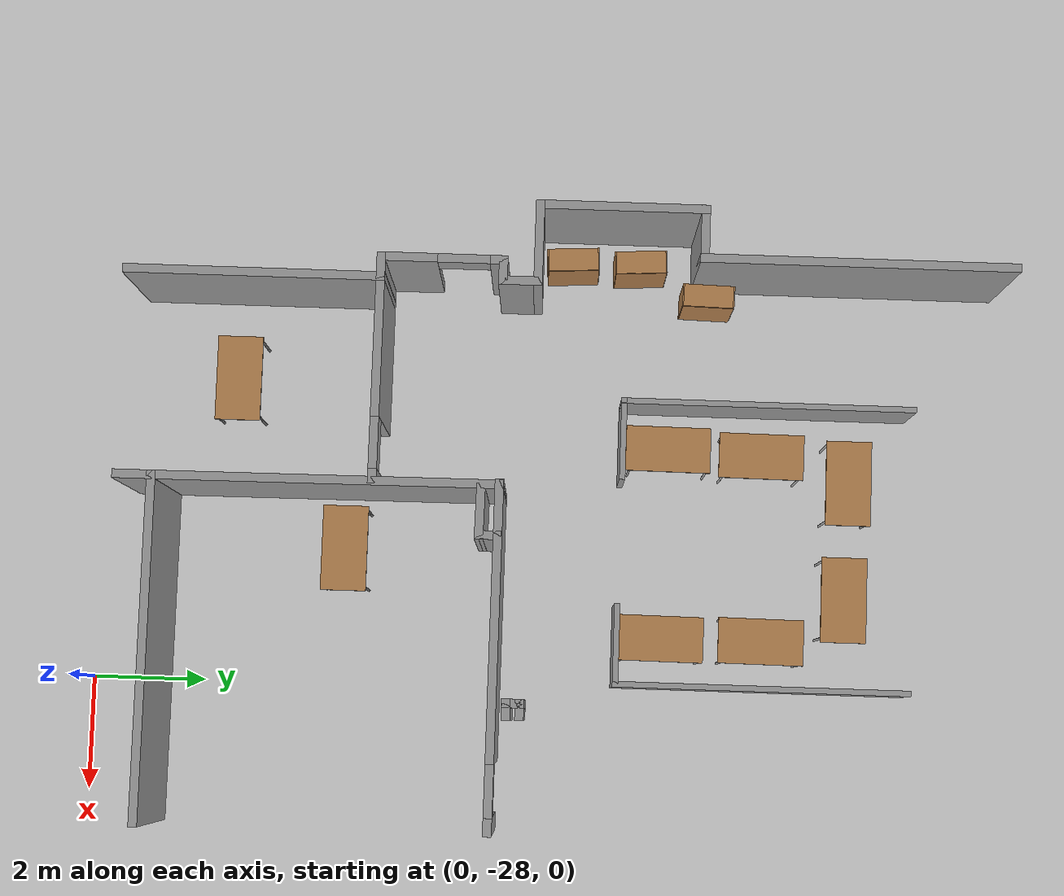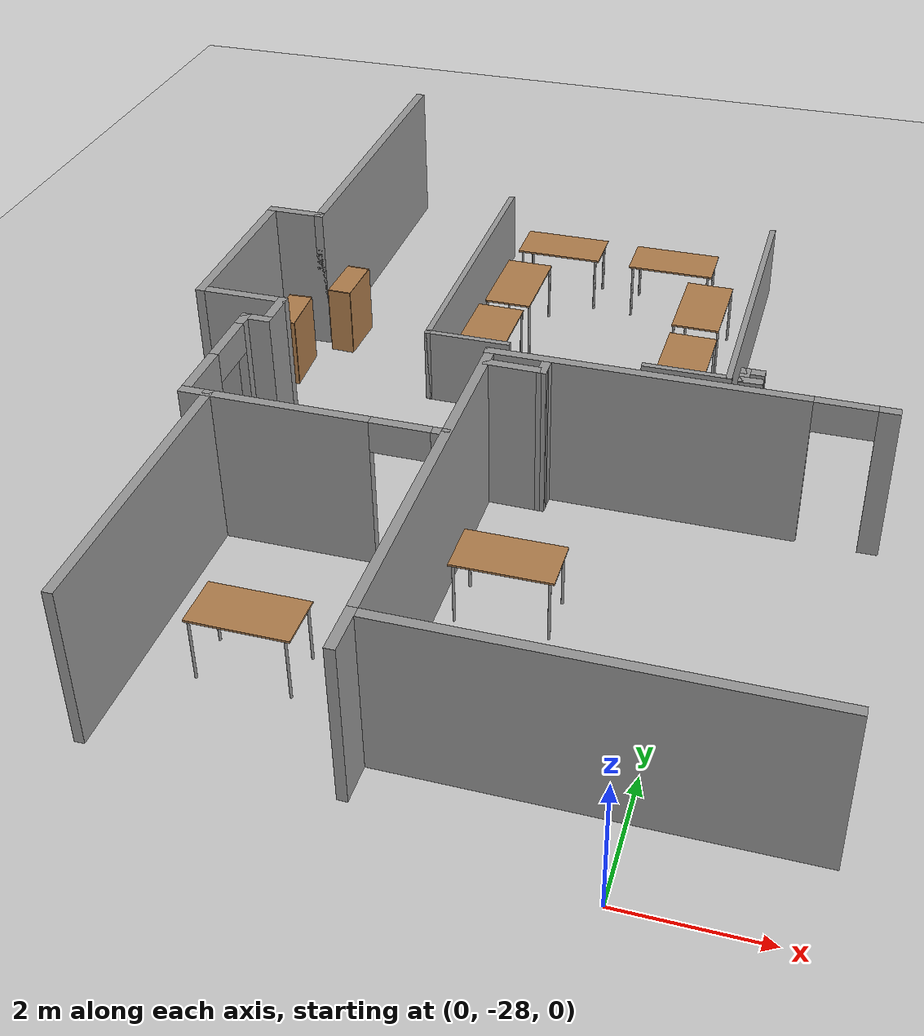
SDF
<sdf version="1.7">
 <world name="default">
  <model name="ground_plane">
   <static>1</static>
   <link name="link">
    <collision name="collision">
     <geometry><plane><normal>0 0 1</normal><size>100 100</size></plane></geometry>
     <surface>
      <contact><collide_bitmask>65535</collide_bitmask></contact>
      <friction><ode><mu>100</mu><mu2>50</mu2></ode></friction>
     </surface>
    </collision>
    <visual name="visual">
     <cast_shadows>0</cast_shadows>
     <geometry><plane><normal>0 0 1</normal><size>100 100</size></plane></geometry>
     <material>
      <script><uri>file://media/materials/scripts/gazebo.material</uri><name>Gazebo/Grey</name></script>
     </material>
    </visual>
   </link>
  </model>
  <model name="XXXXX_office_centered">
   <pose>8.46852 -9.33941 0 0 -0 0</pose>
   <link name="Wall_16">
    <collision name="Wall_16_Collision">
     <geometry><box><size>6 0.15 2.5</size></box></geometry>
     <pose>0 0 1.25 0 -0 0</pose>
    </collision>
    <visual name="Wall_16_Visual">
     <pose>0 0 1.25 0 -0 0</pose>
     <geometry><box><size>6 0.15 2.5</size></box></geometry>
     <material>
      <script><uri>file://media/materials/scripts/gazebo.material</uri><name>Gazebo/Grey</name></script>
      <ambient>1 1 1 1</ambient>
     </material>
     <meta><layer>0</layer></meta>
    </visual>
    <pose>-8.95 -17.3501 0 0 -0 3.14159</pose>
   </link>
   <link name="Wall_168">
    <collision name="Wall_168_Collision">
     <geometry><box><size>5.2 0.1 1.3</size></box></geometry>
     <pose>0 0 0.65 0 -0 0</pose>
    </collision>
    <visual name="Wall_168_Visual">
     <pose>0 0 0.65 0 -0 0</pose>
     <geometry><box><size>5.2 0.1 1.3</size></box></geometry>
     <material>
      <script><uri>file://media/materials/scripts/gazebo.material</uri><name>Gazebo/Grey</name></script>
      <ambient>1 1 1 1</ambient>
     </material>
     <meta><layer>0</layer></meta>
    </visual>
    <pose>-13.6017 -6.76685 0 0 -0 -1.5708</pose>
   </link>
   <link name="Wall_169">
    <collision name="Wall_169_Collision">
     <geometry><box><size>1.44982 0.1 1.3</size></box></geometry>
     <pose>0 0 0.65 0 -0 0</pose>
    </collision>
    <visual name="Wall_169_Visual">
     <pose>0 0 0.65 0 -0 0</pose>
     <geometry><box><size>1.44982 0.1 1.3</size></box></geometry>
     <material>
      <script><uri>file://media/materials/scripts/gazebo.material</uri><name>Gazebo/Grey</name></script>
      <ambient>1 1 1 1</ambient>
     </material>
     <meta><layer>0</layer></meta>
    </visual>
    <pose>-12.9267 -9.31685 0 0 -0 0</pose>
   </link>
   <link name="Wall_17">
    <collision name="Wall_17_Collision">
     <geometry><box><size>6.06274 0.15 2.5</size></box></geometry>
     <pose>0 0 1.25 0 -0 0</pose>
    </collision>
    <visual name="Wall_17_Visual">
     <pose>0 0 1.25 0 -0 0</pose>
     <geometry><box><size>6.06274 0.15 2.5</size></box></geometry>
     <material>
      <script><uri>file://media/materials/scripts/gazebo.material</uri><name>Gazebo/Grey</name></script>
      <ambient>1 1 1 1</ambient>
     </material>
     <meta><layer>0</layer></meta>
    </visual>
    <pose>-11.8884 -14.3938 0 0 -0 1.57532</pose>
   </link>
   <link name="Wall_171">
    <collision name="Wall_171_Collision">
     <geometry><box><size>5.2 0.1 1.3</size></box></geometry>
     <pose>0 0 0.65 0 -0 0</pose>
    </collision>
    <visual name="Wall_171_Visual">
     <pose>0 0 0.65 0 -0 0</pose>
     <geometry><box><size>5.2 0.1 1.3</size></box></geometry>
     <material>
      <script><uri>file://media/materials/scripts/gazebo.material</uri><name>Gazebo/Grey</name></script>
      <ambient>1 1 1 1</ambient>
     </material>
     <meta><layer>0</layer></meta>
    </visual>
    <pose>-8.61273 -6.78585 0 0 -0 -1.5708</pose>
   </link>
   <link name="Wall_172">
    <collision name="Wall_172_Collision">
     <geometry><box><size>1.45042 0.1 1.3</size></box></geometry>
     <pose>0 0 0.65 0 -0 0</pose>
    </collision>
    <visual name="Wall_172_Visual">
     <pose>0 0 0.65 0 -0 0</pose>
     <geometry><box><size>1.45042 0.1 1.3</size></box></geometry>
     <material>
      <script><uri>file://media/materials/scripts/gazebo.material</uri><name>Gazebo/Grey</name></script>
      <ambient>1 1 1 1</ambient>
     </material>
     <meta><layer>0</layer></meta>
    </visual>
    <pose>-9.28773 -9.33585 0 0 -0 3.14159</pose>
   </link>
   <link name="Wall_18">
    <pose>-8.98343 -11.4376 0 0 -0 -7.6e-05</pose>
    <visual name="Wall_18_Visual_0">
     <pose>-0.603862 0 1.25 0 -0 0</pose>
     <geometry><box><size>4.80568 0.15 2.5</size></box></geometry>
     <material>
      <script><uri>file://media/materials/scripts/gazebo.material</uri><name>Gazebo/Grey</name></script>
      <ambient>1 1 1 1</ambient>
     </material>
     <meta><layer>0</layer></meta>
    </visual>
    <collision name="Wall_18_Collision_0">
     <geometry><box><size>4.80568 0.15 2.5</size></box></geometry>
     <pose>-0.603862 0 1.25 0 -0 0</pose>
    </collision>
    <visual name="Wall_18_Visual_1">
     <pose>2.85284 0 1.25 0 -0 0</pose>
     <geometry><box><size>0.307723 0.15 2.5</size></box></geometry>
     <material>
      <script><uri>file://media/materials/scripts/gazebo.material</uri><name>Gazebo/Grey</name></script>
      <ambient>1 1 1 1</ambient>
     </material>
     <meta><layer>0</layer></meta>
    </visual>
    <collision name="Wall_18_Collision_1">
     <geometry><box><size>0.307723 0.15 2.5</size></box></geometry>
     <pose>2.85284 0 1.25 0 -0 0</pose>
    </collision>
    <visual name="Wall_18_Visual_2">
     <pose>2.24898 0 2.25 0 -0 0</pose>
     <geometry><box><size>0.9 0.15 0.5</size></box></geometry>
     <material>
      <script><uri>file://media/materials/scripts/gazebo.material</uri><name>Gazebo/Grey</name></script>
      <ambient>1 1 1 1</ambient>
     </material>
     <meta><layer>0</layer></meta>
    </visual>
    <collision name="Wall_18_Collision_2">
     <geometry><box><size>0.9 0.15 0.5</size></box></geometry>
     <pose>2.24898 0 2.25 0 -0 0</pose>
    </collision>
   </link>
   <link name="Wall_23">
    <collision name="Wall_23_Collision">
     <geometry><box><size>4.5 0.15 2.5</size></box></geometry>
     <pose>0 0 1.25 0 -0 0</pose>
    </collision>
    <visual name="Wall_23_Visual">
     <pose>0 0 1.25 0 -0 0</pose>
     <geometry><box><size>4.5 0.15 2.5</size></box></geometry>
     <material>
      <script><uri>file://media/materials/scripts/gazebo.material</uri><name>Gazebo/Grey</name></script>
      <ambient>1 1 1 1</ambient>
     </material>
     <meta><layer>0</layer></meta>
    </visual>
    <pose>-15.425 -15.7751 0 0 -0 1.5708</pose>
   </link>
   <link name="Wall_24">
    <collision name="Wall_24_Collision">
     <geometry><box><size>0.5 0.15 2.5</size></box></geometry>
     <pose>0 0 1.25 0 -0 0</pose>
    </collision>
    <visual name="Wall_24_Visual">
     <pose>0 0 1.25 0 -0 0</pose>
     <geometry><box><size>0.5 0.15 2.5</size></box></geometry>
     <material>
      <script><uri>file://media/materials/scripts/gazebo.material</uri><name>Gazebo/Grey</name></script>
      <ambient>1 1 1 1</ambient>
     </material>
     <meta><layer>0</layer></meta>
    </visual>
    <pose>-15.6 -13.6001 0 0 -0 3.14159</pose>
   </link>
   <link name="Wall_25">
    <pose>-15.775 -12.5501 0 0 -0 1.5708</pose>
    <visual name="Wall_25_Visual_0">
     <pose>-0.602648 0 1.25 0 -0 0</pose>
     <geometry><box><size>1.0447 0.15 2.5</size></box></geometry>
     <material>
      <script><uri>file://media/materials/scripts/gazebo.material</uri><name>Gazebo/Grey</name></script>
      <ambient>1 1 1 1</ambient>
     </material>
     <meta><layer>0</layer></meta>
    </visual>
    <collision name="Wall_25_Collision_0">
     <geometry><box><size>1.0447 0.15 2.5</size></box></geometry>
     <pose>-0.602648 0 1.25 0 -0 0</pose>
    </collision>
    <visual name="Wall_25_Visual_1">
     <pose>0.972352 0 1.25 0 -0 0</pose>
     <geometry><box><size>0.305297 0.15 2.5</size></box></geometry>
     <material>
      <script><uri>file://media/materials/scripts/gazebo.material</uri><name>Gazebo/Grey</name></script>
      <ambient>1 1 1 1</ambient>
     </material>
     <meta><layer>0</layer></meta>
    </visual>
    <collision name="Wall_25_Collision_1">
     <geometry><box><size>0.305297 0.15 2.5</size></box></geometry>
     <pose>0.972352 0 1.25 0 -0 0</pose>
    </collision>
    <visual name="Wall_25_Visual_2">
     <pose>0.369703 0 2.25 0 -0 0</pose>
     <geometry><box><size>0.9 0.15 0.5</size></box></geometry>
     <material>
      <script><uri>file://media/materials/scripts/gazebo.material</uri><name>Gazebo/Grey</name></script>
      <ambient>1 1 1 1</ambient>
     </material>
     <meta><layer>0</layer></meta>
    </visual>
    <collision name="Wall_25_Collision_2">
     <geometry><box><size>0.9 0.15 0.5</size></box></geometry>
     <pose>0.369703 0 2.25 0 -0 0</pose>
    </collision>
   </link>
   <link name="Wall_26">
    <collision name="Wall_26_Collision">
     <geometry><box><size>0.5 0.15 2.5</size></box></geometry>
     <pose>0 0 1.25 0 -0 0</pose>
    </collision>
    <visual name="Wall_26_Visual">
     <pose>0 0 1.25 0 -0 0</pose>
     <geometry><box><size>0.5 0.15 2.5</size></box></geometry>
     <material>
      <script><uri>file://media/materials/scripts/gazebo.material</uri><name>Gazebo/Grey</name></script>
      <ambient>1 1 1 1</ambient>
     </material>
     <meta><layer>0</layer></meta>
    </visual>
    <pose>-15.6 -11.5001 0 0 -0 0</pose>
   </link>
   <link name="Wall_27">
    <collision name="Wall_27_Collision">
     <geometry><box><size>0.75 0.15 2.5</size></box></geometry>
     <pose>0 0 1.25 0 -0 0</pose>
    </collision>
    <visual name="Wall_27_Visual">
     <pose>0 0 1.25 0 -0 0</pose>
     <geometry><box><size>0.75 0.15 2.5</size></box></geometry>
     <material>
      <script><uri>file://media/materials/scripts/gazebo.material</uri><name>Gazebo/Grey</name></script>
      <ambient>1 1 1 1</ambient>
     </material>
     <meta><layer>0</layer></meta>
    </visual>
    <pose>-15.425 -11.2001 0 0 -0 1.5708</pose>
   </link>
   <link name="Wall_28">
    <collision name="Wall_28_Collision">
     <geometry><box><size>1.5 0.15 2.5</size></box></geometry>
     <pose>0 0 1.25 0 -0 0</pose>
    </collision>
    <visual name="Wall_28_Visual">
     <pose>0 0 1.25 0 -0 0</pose>
     <geometry><box><size>1.5 0.15 2.5</size></box></geometry>
     <material>
      <script><uri>file://media/materials/scripts/gazebo.material</uri><name>Gazebo/Grey</name></script>
      <ambient>1 1 1 1</ambient>
     </material>
     <meta><layer>0</layer></meta>
    </visual>
    <pose>-16.1 -10.9001 0 0 -0 3.14159</pose>
   </link>
   <link name="Wall_29">
    <collision name="Wall_29_Collision">
     <geometry><box><size>3 0.15 2.5</size></box></geometry>
     <pose>0 0 1.25 0 -0 0</pose>
    </collision>
    <visual name="Wall_29_Visual">
     <pose>0 0 1.25 0 -0 0</pose>
     <geometry><box><size>3 0.15 2.5</size></box></geometry>
     <material>
      <script><uri>file://media/materials/scripts/gazebo.material</uri><name>Gazebo/Grey</name></script>
      <ambient>1 1 1 1</ambient>
     </material>
     <meta><layer>0</layer></meta>
    </visual>
    <pose>-16.775 -9.47515 0 0 -0 1.5708</pose>
   </link>
   <link name="Wall_30">
    <collision name="Wall_30_Collision">
     <geometry><box><size>1 0.15 2.5</size></box></geometry>
     <pose>0 0 1.25 0 -0 0</pose>
    </collision>
    <visual name="Wall_30_Visual">
     <pose>0 0 1.25 0 -0 0</pose>
     <geometry><box><size>1 0.15 2.5</size></box></geometry>
     <material>
      <script><uri>file://media/materials/scripts/gazebo.material</uri><name>Gazebo/Grey</name></script>
      <ambient>1 1 1 1</ambient>
     </material>
     <meta><layer>0</layer></meta>
    </visual>
    <pose>-16.35 -8.05015 0 0 -0 0</pose>
   </link>
   <link name="Wall_31">
    <collision name="Wall_31_Collision">
     <geometry><box><size>5.5 0.15 2.5</size></box></geometry>
     <pose>0 0 1.25 0 -0 0</pose>
    </collision>
    <visual name="Wall_31_Visual">
     <pose>0 0 1.25 0 -0 0</pose>
     <geometry><box><size>5.5 0.15 2.5</size></box></geometry>
     <material>
      <script><uri>file://media/materials/scripts/gazebo.material</uri><name>Gazebo/Grey</name></script>
      <ambient>1 1 1 1</ambient>
     </material>
     <meta><layer>0</layer></meta>
    </visual>
    <pose>-15.925 -5.37515 0 0 -0 1.5708</pose>
   </link>
   <link name="Wall_65">
    <collision name="Wall_65_Collision">
     <geometry><box><size>0.959175 0.15 2.5</size></box></geometry>
     <pose>0 0 1.25 0 -0 0</pose>
    </collision>
    <visual name="Wall_65_Visual">
     <pose>0 0 1.25 0 -0 0</pose>
     <geometry><box><size>0.959175 0.15 2.5</size></box></geometry>
     <material>
      <script><uri>file://media/materials/scripts/gazebo.material</uri><name>Gazebo/Grey</name></script>
      <ambient>1 1 1 1</ambient>
     </material>
     <meta><layer>0</layer></meta>
    </visual>
    <pose>-11.4354 -11.7519 0 0 -0 -0.012499</pose>
   </link>
   <link name="Wall_66">
    <collision name="Wall_66_Collision">
     <geometry><box><size>0.453417 0.15 2.5</size></box></geometry>
     <pose>0 0 1.25 0 -0 0</pose>
    </collision>
    <visual name="Wall_66_Visual">
     <pose>0 0 1.25 0 -0 0</pose>
     <geometry><box><size>0.453417 0.15 2.5</size></box></geometry>
     <material>
      <script><uri>file://media/materials/scripts/gazebo.material</uri><name>Gazebo/Grey</name></script>
      <ambient>1 1 1 1</ambient>
     </material>
     <meta><layer>0</layer></meta>
    </visual>
    <pose>-11.0308 -11.6053 0 0 -0 1.5708</pose>
   </link>
   <link name="Wall_73">
    <collision name="Wall_73_Collision">
     <geometry><box><size>0.740743 0.15 2.5</size></box></geometry>
     <pose>0 0 1.25 0 -0 0</pose>
    </collision>
    <visual name="Wall_73_Visual">
     <pose>0 0 1.25 0 -0 0</pose>
     <geometry><box><size>0.740743 0.15 2.5</size></box></geometry>
     <material>
      <script><uri>file://media/materials/scripts/gazebo.material</uri><name>Gazebo/Grey</name></script>
      <ambient>1 1 1 1</ambient>
     </material>
     <meta><layer>0</layer></meta>
    </visual>
    <pose>-11.8748 -17.6455 0 0 -0 -1.57005</pose>
   </link>
   <link name="Wall_75">
    <pose>-13.6757 -13.6019 0 0 -0 -0.000995</pose>
    <visual name="Wall_75_Visual_0">
     <pose>-0.573308 0 1.25 0 -0 0</pose>
     <geometry><box><size>2.50208 0.15 2.5</size></box></geometry>
     <material>
      <script><uri>file://media/materials/scripts/gazebo.material</uri><name>Gazebo/Grey</name></script>
      <ambient>1 1 1 1</ambient>
     </material>
     <meta><layer>0</layer></meta>
    </visual>
    <collision name="Wall_75_Collision_0">
     <geometry><box><size>2.50208 0.15 2.5</size></box></geometry>
     <pose>-0.573308 0 1.25 0 -0 0</pose>
    </collision>
    <visual name="Wall_75_Visual_1">
     <pose>1.70104 0 1.25 0 -0 0</pose>
     <geometry><box><size>0.246616 0.15 2.5</size></box></geometry>
     <material>
      <script><uri>file://media/materials/scripts/gazebo.material</uri><name>Gazebo/Grey</name></script>
      <ambient>1 1 1 1</ambient>
     </material>
     <meta><layer>0</layer></meta>
    </visual>
    <collision name="Wall_75_Collision_1">
     <geometry><box><size>0.246616 0.15 2.5</size></box></geometry>
     <pose>1.70104 0 1.25 0 -0 0</pose>
    </collision>
    <visual name="Wall_75_Visual_2">
     <pose>1.12773 0 2.25 0 -0 0</pose>
     <geometry><box><size>0.9 0.15 0.5</size></box></geometry>
     <material>
      <script><uri>file://media/materials/scripts/gazebo.material</uri><name>Gazebo/Grey</name></script>
      <ambient>1 1 1 1</ambient>
     </material>
     <meta><layer>0</layer></meta>
    </visual>
    <collision name="Wall_75_Collision_2">
     <geometry><box><size>0.9 0.15 0.5</size></box></geometry>
     <pose>1.12773 0 2.25 0 -0 0</pose>
    </collision>
   </link>
   <link name="Wall_77">
    <collision name="Wall_77_Collision">
     <geometry><box><size>0.374922 0.15 2.5</size></box></geometry>
     <pose>0 0 1.25 0 -0 0</pose>
    </collision>
    <visual name="Wall_77_Visual">
     <pose>0 0 1.25 0 -0 0</pose>
     <geometry><box><size>0.374922 0.15 2.5</size></box></geometry>
     <material>
      <script><uri>file://media/materials/scripts/gazebo.material</uri><name>Gazebo/Grey</name></script>
      <ambient>1 1 1 1</ambient>
     </material>
     <meta><layer>0</layer></meta>
    </visual>
    <pose>-8.21046 -11.0817 0 0 -0 1.5708</pose>
   </link>
   <link name="Wall_78">
    <collision name="Wall_78_Collision">
     <geometry><box><size>0.358294 0.15 2.5</size></box></geometry>
     <pose>0 0 1.25 0 -0 0</pose>
    </collision>
    <visual name="Wall_78_Visual">
     <pose>0 0 1.25 0 -0 0</pose>
     <geometry><box><size>0.358294 0.15 2.5</size></box></geometry>
     <material>
      <script><uri>file://media/materials/scripts/gazebo.material</uri><name>Gazebo/Grey</name></script>
      <ambient>1 1 1 1</ambient>
     </material>
     <meta><layer>0</layer></meta>
    </visual>
    <pose>-8.10631 -10.9693 0 0 -0 0</pose>
   </link>
   <link name="Wall_80">
    <collision name="Wall_80_Collision">
     <geometry><box><size>0.358399 0.15 2.5</size></box></geometry>
     <pose>0 0 1.25 0 -0 0</pose>
    </collision>
    <visual name="Wall_80_Visual">
     <pose>0 0 1.25 0 -0 0</pose>
     <geometry><box><size>0.358399 0.15 2.5</size></box></geometry>
     <material>
      <script><uri>file://media/materials/scripts/gazebo.material</uri><name>Gazebo/Grey</name></script>
      <ambient>1 1 1 1</ambient>
     </material>
     <meta><layer>0</layer></meta>
    </visual>
    <pose>-8.10301 -11.2041 0 0 -0 -3.10986</pose>
   </link>
   <static>1</static>
  </model>
  <model name="table">
   <static>1</static>
   <link name="link">
    <collision name="surface">
     <pose>0 0 1 0 -0 0</pose>
     <geometry><box><size>1.5 0.8 0.03</size></box></geometry>
     <surface><friction><ode><mu>0.6</mu><mu2>0.6</mu2></ode></friction></surface>
    </collision>
    <visual name="visual1">
     <pose>0 0 1 0 -0 0</pose>
     <geometry><box><size>1.5 0.8 0.03</size></box></geometry>
     <material>
      <script><uri>file://media/materials/scripts/gazebo.material</uri><name>Gazebo/Wood</name></script>
     </material>
    </visual>
    <collision name="collision_front_left_leg">
     <pose>0.68 0.38 0.5 0 -0 0</pose>
     <geometry><cylinder><radius>0.02</radius><length>1</length></cylinder></geometry>
    </collision>
    <visual name="visual_front_left_leg">
     <pose>0.68 0.38 0.5 0 -0 0</pose>
     <geometry><cylinder><radius>0.02</radius><length>1</length></cylinder></geometry>
     <material>
      <script><uri>file://media/materials/scripts/gazebo.material</uri><name>Gazebo/Grey</name></script>
     </material>
    </visual>
    <collision name="collision_front_right_leg">
     <pose>0.68 -0.38 0.5 0 -0 0</pose>
     <geometry><cylinder><radius>0.02</radius><length>1</length></cylinder></geometry>
    </collision>
    <visual name="visual_front_right_leg">
     <pose>0.68 -0.38 0.5 0 -0 0</pose>
     <geometry><cylinder><radius>0.02</radius><length>1</length></cylinder></geometry>
     <material>
      <script><uri>file://media/materials/scripts/gazebo.material</uri><name>Gazebo/Grey</name></script>
     </material>
    </visual>
    <collision name="collision_back_right_leg">
     <pose>-0.68 -0.38 0.5 0 -0 0</pose>
     <geometry><cylinder><radius>0.02</radius><length>1</length></cylinder></geometry>
    </collision>
    <visual name="visual_back_right_leg">
     <pose>-0.68 -0.38 0.5 0 -0 0</pose>
     <geometry><cylinder><radius>0.02</radius><length>1</length></cylinder></geometry>
     <material>
      <script><uri>file://media/materials/scripts/gazebo.material</uri><name>Gazebo/Grey</name></script>
     </material>
    </visual>
    <collision name="collision_back_left_leg">
     <pose>-0.68 0.38 0.5 0 -0 0</pose>
     <geometry><cylinder><radius>0.02</radius><length>1</length></cylinder></geometry>
    </collision>
    <visual name="visual_back_left_leg">
     <pose>-0.68 0.38 0.5 0 -0 0</pose>
     <geometry><cylinder><radius>0.02</radius><length>1</length></cylinder></geometry>
     <material>
      <script><uri>file://media/materials/scripts/gazebo.material</uri><name>Gazebo/Grey</name></script>
     </material>
    </visual>
   </link>
   <pose>-2.38595 -23.5052 0 0 -0 0</pose>
  </model>
  <model name="table_2">
   <static>1</static>
   <link name="link">
    <collision name="surface">
     <pose>0 0 1 0 -0 0</pose>
     <geometry><box><size>1.5 0.8 0.03</size></box></geometry>
     <surface><friction><ode><mu>0.6</mu><mu2>0.6</mu2></ode></friction></surface>
    </collision>
    <visual name="visual1">
     <pose>0 0 1 0 -0 0</pose>
     <geometry><box><size>1.5 0.8 0.03</size></box></geometry>
     <material>
      <script><uri>file://media/materials/scripts/gazebo.material</uri><name>Gazebo/Wood</name></script>
     </material>
    </visual>
    <collision name="collision_front_left_leg">
     <pose>0.68 0.38 0.5 0 -0 0</pose>
     <geometry><cylinder><radius>0.02</radius><length>1</length></cylinder></geometry>
    </collision>
    <visual name="visual_front_left_leg">
     <pose>0.68 0.38 0.5 0 -0 0</pose>
     <geometry><cylinder><radius>0.02</radius><length>1</length></cylinder></geometry>
     <material>
      <script><uri>file://media/materials/scripts/gazebo.material</uri><name>Gazebo/Grey</name></script>
     </material>
    </visual>
    <collision name="collision_front_right_leg">
     <pose>0.68 -0.38 0.5 0 -0 0</pose>
     <geometry><cylinder><radius>0.02</radius><length>1</length></cylinder></geometry>
    </collision>
    <visual name="visual_front_right_leg">
     <pose>0.68 -0.38 0.5 0 -0 0</pose>
     <geometry><cylinder><radius>0.02</radius><length>1</length></cylinder></geometry>
     <material>
      <script><uri>file://media/materials/scripts/gazebo.material</uri><name>Gazebo/Grey</name></script>
     </material>
    </visual>
    <collision name="collision_back_right_leg">
     <pose>-0.68 -0.38 0.5 0 -0 0</pose>
     <geometry><cylinder><radius>0.02</radius><length>1</length></cylinder></geometry>
    </collision>
    <visual name="visual_back_right_leg">
     <pose>-0.68 -0.38 0.5 0 -0 0</pose>
     <geometry><cylinder><radius>0.02</radius><length>1</length></cylinder></geometry>
     <material>
      <script><uri>file://media/materials/scripts/gazebo.material</uri><name>Gazebo/Grey</name></script>
     </material>
    </visual>
    <collision name="collision_back_left_leg">
     <pose>-0.68 0.38 0.5 0 -0 0</pose>
     <geometry><cylinder><radius>0.02</radius><length>1</length></cylinder></geometry>
    </collision>
    <visual name="visual_back_left_leg">
     <pose>-0.68 0.38 0.5 0 -0 0</pose>
     <geometry><cylinder><radius>0.02</radius><length>1</length></cylinder></geometry>
     <material>
      <script><uri>file://media/materials/scripts/gazebo.material</uri><name>Gazebo/Grey</name></script>
     </material>
    </visual>
   </link>
   <pose>-3.82224 -14.6388 0 0 -0 0</pose>
  </model>
  <model name="table_3">
   <static>1</static>
   <link name="link">
    <collision name="surface">
     <pose>0 0 1 0 -0 0</pose>
     <geometry><box><size>1.5 0.8 0.03</size></box></geometry>
     <surface><friction><ode><mu>0.6</mu><mu2>0.6</mu2></ode></friction></surface>
    </collision>
    <visual name="visual1">
     <pose>0 0 1 0 -0 0</pose>
     <geometry><box><size>1.5 0.8 0.03</size></box></geometry>
     <material>
      <script><uri>file://media/materials/scripts/gazebo.material</uri><name>Gazebo/Wood</name></script>
     </material>
    </visual>
    <collision name="collision_front_left_leg">
     <pose>0.68 0.38 0.5 0 -0 0</pose>
     <geometry><cylinder><radius>0.02</radius><length>1</length></cylinder></geometry>
    </collision>
    <visual name="visual_front_left_leg">
     <pose>0.68 0.38 0.5 0 -0 0</pose>
     <geometry><cylinder><radius>0.02</radius><length>1</length></cylinder></geometry>
     <material>
      <script><uri>file://media/materials/scripts/gazebo.material</uri><name>Gazebo/Grey</name></script>
     </material>
    </visual>
    <collision name="collision_front_right_leg">
     <pose>0.68 -0.38 0.5 0 -0 0</pose>
     <geometry><cylinder><radius>0.02</radius><length>1</length></cylinder></geometry>
    </collision>
    <visual name="visual_front_right_leg">
     <pose>0.68 -0.38 0.5 0 -0 0</pose>
     <geometry><cylinder><radius>0.02</radius><length>1</length></cylinder></geometry>
     <material>
      <script><uri>file://media/materials/scripts/gazebo.material</uri><name>Gazebo/Grey</name></script>
     </material>
    </visual>
    <collision name="collision_back_right_leg">
     <pose>-0.68 -0.38 0.5 0 -0 0</pose>
     <geometry><cylinder><radius>0.02</radius><length>1</length></cylinder></geometry>
    </collision>
    <visual name="visual_back_right_leg">
     <pose>-0.68 -0.38 0.5 0 -0 0</pose>
     <geometry><cylinder><radius>0.02</radius><length>1</length></cylinder></geometry>
     <material>
      <script><uri>file://media/materials/scripts/gazebo.material</uri><name>Gazebo/Grey</name></script>
     </material>
    </visual>
    <collision name="collision_back_left_leg">
     <pose>-0.68 0.38 0.5 0 -0 0</pose>
     <geometry><cylinder><radius>0.02</radius><length>1</length></cylinder></geometry>
    </collision>
    <visual name="visual_back_left_leg">
     <pose>-0.68 0.38 0.5 0 -0 0</pose>
     <geometry><cylinder><radius>0.02</radius><length>1</length></cylinder></geometry>
     <material>
      <script><uri>file://media/materials/scripts/gazebo.material</uri><name>Gazebo/Grey</name></script>
     </material>
    </visual>
   </link>
   <pose>-1.75125 -14.685 0 0 -0 0</pose>
  </model>
  <model name="table_29">
   <static>1</static>
   <link name="link">
    <collision name="surface">
     <pose>0 0 1 0 -0 0</pose>
     <geometry><box><size>1.5 0.8 0.03</size></box></geometry>
     <surface><friction><ode><mu>0.6</mu><mu2>0.6</mu2></ode></friction></surface>
    </collision>
    <visual name="visual1">
     <pose>0 0 1 0 -0 0</pose>
     <geometry><box><size>1.5 0.8 0.03</size></box></geometry>
     <material>
      <script><uri>file://media/materials/scripts/gazebo.material</uri><name>Gazebo/Wood</name></script>
     </material>
    </visual>
    <collision name="collision_front_left_leg">
     <pose>0.68 0.38 0.5 0 -0 0</pose>
     <geometry><cylinder><radius>0.02</radius><length>1</length></cylinder></geometry>
    </collision>
    <visual name="visual_front_left_leg">
     <pose>0.68 0.38 0.5 0 -0 0</pose>
     <geometry><cylinder><radius>0.02</radius><length>1</length></cylinder></geometry>
     <material>
      <script><uri>file://media/materials/scripts/gazebo.material</uri><name>Gazebo/Grey</name></script>
     </material>
    </visual>
    <collision name="collision_front_right_leg">
     <pose>0.68 -0.38 0.5 0 -0 0</pose>
     <geometry><cylinder><radius>0.02</radius><length>1</length></cylinder></geometry>
    </collision>
    <visual name="visual_front_right_leg">
     <pose>0.68 -0.38 0.5 0 -0 0</pose>
     <geometry><cylinder><radius>0.02</radius><length>1</length></cylinder></geometry>
     <material>
      <script><uri>file://media/materials/scripts/gazebo.material</uri><name>Gazebo/Grey</name></script>
     </material>
    </visual>
    <collision name="collision_back_right_leg">
     <pose>-0.68 -0.38 0.5 0 -0 0</pose>
     <geometry><cylinder><radius>0.02</radius><length>1</length></cylinder></geometry>
    </collision>
    <visual name="visual_back_right_leg">
     <pose>-0.68 -0.38 0.5 0 -0 0</pose>
     <geometry><cylinder><radius>0.02</radius><length>1</length></cylinder></geometry>
     <material>
      <script><uri>file://media/materials/scripts/gazebo.material</uri><name>Gazebo/Grey</name></script>
     </material>
    </visual>
    <collision name="collision_back_left_leg">
     <pose>-0.68 0.38 0.5 0 -0 0</pose>
     <geometry><cylinder><radius>0.02</radius><length>1</length></cylinder></geometry>
    </collision>
    <visual name="visual_back_left_leg">
     <pose>-0.68 0.38 0.5 0 -0 0</pose>
     <geometry><cylinder><radius>0.02</radius><length>1</length></cylinder></geometry>
     <material>
      <script><uri>file://media/materials/scripts/gazebo.material</uri><name>Gazebo/Grey</name></script>
     </material>
    </visual>
   </link>
   <pose>-5.35612 -25.5085 0 0 -0 0</pose>
  </model>
  <model name="table_26_clone_22">
   <static>1</static>
   <link name="link">
    <collision name="surface">
     <pose>0 0 1 0 -0 0</pose>
     <geometry><box><size>1.5 0.8 0.03</size></box></geometry>
     <surface><friction><ode><mu>0.6</mu><mu2>0.6</mu2></ode></friction></surface>
    </collision>
    <visual name="visual1">
     <pose>0 0 1 0 -0 0</pose>
     <geometry><box><size>1.5 0.8 0.03</size></box></geometry>
     <material>
      <script><uri>file://media/materials/scripts/gazebo.material</uri><name>Gazebo/Wood</name></script>
     </material>
    </visual>
    <collision name="collision_front_left_leg">
     <pose>0.68 0.38 0.5 0 -0 0</pose>
     <geometry><cylinder><radius>0.02</radius><length>1</length></cylinder></geometry>
    </collision>
    <visual name="visual_front_left_leg">
     <pose>0.68 0.38 0.5 0 -0 0</pose>
     <geometry><cylinder><radius>0.02</radius><length>1</length></cylinder></geometry>
     <material>
      <script><uri>file://media/materials/scripts/gazebo.material</uri><name>Gazebo/Grey</name></script>
     </material>
    </visual>
    <collision name="collision_front_right_leg">
     <pose>0.68 -0.38 0.5 0 -0 0</pose>
     <geometry><cylinder><radius>0.02</radius><length>1</length></cylinder></geometry>
    </collision>
    <visual name="visual_front_right_leg">
     <pose>0.68 -0.38 0.5 0 -0 0</pose>
     <geometry><cylinder><radius>0.02</radius><length>1</length></cylinder></geometry>
     <material>
      <script><uri>file://media/materials/scripts/gazebo.material</uri><name>Gazebo/Grey</name></script>
     </material>
    </visual>
    <collision name="collision_back_right_leg">
     <pose>-0.68 -0.38 0.5 0 -0 0</pose>
     <geometry><cylinder><radius>0.02</radius><length>1</length></cylinder></geometry>
    </collision>
    <visual name="visual_back_right_leg">
     <pose>-0.68 -0.38 0.5 0 -0 0</pose>
     <geometry><cylinder><radius>0.02</radius><length>1</length></cylinder></geometry>
     <material>
      <script><uri>file://media/materials/scripts/gazebo.material</uri><name>Gazebo/Grey</name></script>
     </material>
    </visual>
    <collision name="collision_back_left_leg">
     <pose>-0.68 0.38 0.5 0 -0 0</pose>
     <geometry><cylinder><radius>0.02</radius><length>1</length></cylinder></geometry>
    </collision>
    <visual name="visual_back_left_leg">
     <pose>-0.68 0.38 0.5 0 -0 0</pose>
     <geometry><cylinder><radius>0.02</radius><length>1</length></cylinder></geometry>
     <material>
      <script><uri>file://media/materials/scripts/gazebo.material</uri><name>Gazebo/Grey</name></script>
     </material>
    </visual>
   </link>
   <pose>-0.970021 -17.8896 0 0 0 -1.57974</pose>
  </model>
  <model name="table_26_clone_23">
   <static>1</static>
   <link name="link">
    <collision name="surface">
     <pose>0 0 1 0 -0 0</pose>
     <geometry><box><size>1.5 0.8 0.03</size></box></geometry>
     <surface><friction><ode><mu>0.6</mu><mu2>0.6</mu2></ode></friction></surface>
    </collision>
    <visual name="visual1">
     <pose>0 0 1 0 -0 0</pose>
     <geometry><box><size>1.5 0.8 0.03</size></box></geometry>
     <material>
      <script><uri>file://media/materials/scripts/gazebo.material</uri><name>Gazebo/Wood</name></script>
     </material>
    </visual>
    <collision name="collision_front_left_leg">
     <pose>0.68 0.38 0.5 0 -0 0</pose>
     <geometry><cylinder><radius>0.02</radius><length>1</length></cylinder></geometry>
    </collision>
    <visual name="visual_front_left_leg">
     <pose>0.68 0.38 0.5 0 -0 0</pose>
     <geometry><cylinder><radius>0.02</radius><length>1</length></cylinder></geometry>
     <material>
      <script><uri>file://media/materials/scripts/gazebo.material</uri><name>Gazebo/Grey</name></script>
     </material>
    </visual>
    <collision name="collision_front_right_leg">
     <pose>0.68 -0.38 0.5 0 -0 0</pose>
     <geometry><cylinder><radius>0.02</radius><length>1</length></cylinder></geometry>
    </collision>
    <visual name="visual_front_right_leg">
     <pose>0.68 -0.38 0.5 0 -0 0</pose>
     <geometry><cylinder><radius>0.02</radius><length>1</length></cylinder></geometry>
     <material>
      <script><uri>file://media/materials/scripts/gazebo.material</uri><name>Gazebo/Grey</name></script>
     </material>
    </visual>
    <collision name="collision_back_right_leg">
     <pose>-0.68 -0.38 0.5 0 -0 0</pose>
     <geometry><cylinder><radius>0.02</radius><length>1</length></cylinder></geometry>
    </collision>
    <visual name="visual_back_right_leg">
     <pose>-0.68 -0.38 0.5 0 -0 0</pose>
     <geometry><cylinder><radius>0.02</radius><length>1</length></cylinder></geometry>
     <material>
      <script><uri>file://media/materials/scripts/gazebo.material</uri><name>Gazebo/Grey</name></script>
     </material>
    </visual>
    <collision name="collision_back_left_leg">
     <pose>-0.68 0.38 0.5 0 -0 0</pose>
     <geometry><cylinder><radius>0.02</radius><length>1</length></cylinder></geometry>
    </collision>
    <visual name="visual_back_left_leg">
     <pose>-0.68 0.38 0.5 0 -0 0</pose>
     <geometry><cylinder><radius>0.02</radius><length>1</length></cylinder></geometry>
     <material>
      <script><uri>file://media/materials/scripts/gazebo.material</uri><name>Gazebo/Grey</name></script>
     </material>
    </visual>
   </link>
   <pose>-0.974973 -16.1285 0 0 0 -1.57974</pose>
  </model>
  <model name="table_26_clone_24">
   <static>1</static>
   <link name="link">
    <collision name="surface">
     <pose>0 0 1 0 -0 0</pose>
     <geometry><box><size>1.5 0.8 0.03</size></box></geometry>
     <surface><friction><ode><mu>0.6</mu><mu2>0.6</mu2></ode></friction></surface>
    </collision>
    <visual name="visual1">
     <pose>0 0 1 0 -0 0</pose>
     <geometry><box><size>1.5 0.8 0.03</size></box></geometry>
     <material>
      <script><uri>file://media/materials/scripts/gazebo.material</uri><name>Gazebo/Wood</name></script>
     </material>
    </visual>
    <collision name="collision_front_left_leg">
     <pose>0.68 0.38 0.5 0 -0 0</pose>
     <geometry><cylinder><radius>0.02</radius><length>1</length></cylinder></geometry>
    </collision>
    <visual name="visual_front_left_leg">
     <pose>0.68 0.38 0.5 0 -0 0</pose>
     <geometry><cylinder><radius>0.02</radius><length>1</length></cylinder></geometry>
     <material>
      <script><uri>file://media/materials/scripts/gazebo.material</uri><name>Gazebo/Grey</name></script>
     </material>
    </visual>
    <collision name="collision_front_right_leg">
     <pose>0.68 -0.38 0.5 0 -0 0</pose>
     <geometry><cylinder><radius>0.02</radius><length>1</length></cylinder></geometry>
    </collision>
    <visual name="visual_front_right_leg">
     <pose>0.68 -0.38 0.5 0 -0 0</pose>
     <geometry><cylinder><radius>0.02</radius><length>1</length></cylinder></geometry>
     <material>
      <script><uri>file://media/materials/scripts/gazebo.material</uri><name>Gazebo/Grey</name></script>
     </material>
    </visual>
    <collision name="collision_back_right_leg">
     <pose>-0.68 -0.38 0.5 0 -0 0</pose>
     <geometry><cylinder><radius>0.02</radius><length>1</length></cylinder></geometry>
    </collision>
    <visual name="visual_back_right_leg">
     <pose>-0.68 -0.38 0.5 0 -0 0</pose>
     <geometry><cylinder><radius>0.02</radius><length>1</length></cylinder></geometry>
     <material>
      <script><uri>file://media/materials/scripts/gazebo.material</uri><name>Gazebo/Grey</name></script>
     </material>
    </visual>
    <collision name="collision_back_left_leg">
     <pose>-0.68 0.38 0.5 0 -0 0</pose>
     <geometry><cylinder><radius>0.02</radius><length>1</length></cylinder></geometry>
    </collision>
    <visual name="visual_back_left_leg">
     <pose>-0.68 0.38 0.5 0 -0 0</pose>
     <geometry><cylinder><radius>0.02</radius><length>1</length></cylinder></geometry>
     <material>
      <script><uri>file://media/materials/scripts/gazebo.material</uri><name>Gazebo/Grey</name></script>
     </material>
    </visual>
   </link>
   <pose>-4.25524 -16.1898 0 0 0 -1.57974</pose>
  </model>
  <model name="table_26_clone_25">
   <static>1</static>
   <link name="link">
    <collision name="surface">
     <pose>0 0 1 0 -0 0</pose>
     <geometry><box><size>1.5 0.8 0.03</size></box></geometry>
     <surface><friction><ode><mu>0.6</mu><mu2>0.6</mu2></ode></friction></surface>
    </collision>
    <visual name="visual1">
     <pose>0 0 1 0 -0 0</pose>
     <geometry><box><size>1.5 0.8 0.03</size></box></geometry>
     <material>
      <script><uri>file://media/materials/scripts/gazebo.material</uri><name>Gazebo/Wood</name></script>
     </material>
    </visual>
    <collision name="collision_front_left_leg">
     <pose>0.68 0.38 0.5 0 -0 0</pose>
     <geometry><cylinder><radius>0.02</radius><length>1</length></cylinder></geometry>
    </collision>
    <visual name="visual_front_left_leg">
     <pose>0.68 0.38 0.5 0 -0 0</pose>
     <geometry><cylinder><radius>0.02</radius><length>1</length></cylinder></geometry>
     <material>
      <script><uri>file://media/materials/scripts/gazebo.material</uri><name>Gazebo/Grey</name></script>
     </material>
    </visual>
    <collision name="collision_front_right_leg">
     <pose>0.68 -0.38 0.5 0 -0 0</pose>
     <geometry><cylinder><radius>0.02</radius><length>1</length></cylinder></geometry>
    </collision>
    <visual name="visual_front_right_leg">
     <pose>0.68 -0.38 0.5 0 -0 0</pose>
     <geometry><cylinder><radius>0.02</radius><length>1</length></cylinder></geometry>
     <material>
      <script><uri>file://media/materials/scripts/gazebo.material</uri><name>Gazebo/Grey</name></script>
     </material>
    </visual>
    <collision name="collision_back_right_leg">
     <pose>-0.68 -0.38 0.5 0 -0 0</pose>
     <geometry><cylinder><radius>0.02</radius><length>1</length></cylinder></geometry>
    </collision>
    <visual name="visual_back_right_leg">
     <pose>-0.68 -0.38 0.5 0 -0 0</pose>
     <geometry><cylinder><radius>0.02</radius><length>1</length></cylinder></geometry>
     <material>
      <script><uri>file://media/materials/scripts/gazebo.material</uri><name>Gazebo/Grey</name></script>
     </material>
    </visual>
    <collision name="collision_back_left_leg">
     <pose>-0.68 0.38 0.5 0 -0 0</pose>
     <geometry><cylinder><radius>0.02</radius><length>1</length></cylinder></geometry>
    </collision>
    <visual name="visual_back_left_leg">
     <pose>-0.68 0.38 0.5 0 -0 0</pose>
     <geometry><cylinder><radius>0.02</radius><length>1</length></cylinder></geometry>
     <material>
      <script><uri>file://media/materials/scripts/gazebo.material</uri><name>Gazebo/Grey</name></script>
     </material>
    </visual>
   </link>
   <pose>-4.3283 -17.8431 0 0 0 -1.57974</pose>
  </model>
  <model name="bookshelf_2_clone_2">
   <static>1</static>
   <link name="link">
    <inertial><mass>1</mass></inertial>
    <collision name="collision_back">
     <pose>0 0.005 0.6 0 -0 0</pose>
     <geometry><box><size>0.9 0.01 1.2</size></box></geometry>
    </collision>
    <visual name="visual1">
     <pose>0 0.005 0.6 0 -0 0</pose>
     <geometry><box><size>0.9 0.01 1.2</size></box></geometry>
     <material>
      <script><uri>file://media/materials/scripts/gazebo.material</uri><name>Gazebo/Wood</name></script>
     </material>
    </visual>
    <collision name="left_side">
     <pose>0.45 -0.195 0.6 0 -0 0</pose>
     <geometry><box><size>0.02 0.4 1.2</size></box></geometry>
    </collision>
    <visual name="visual2">
     <pose>0.45 -0.195 0.6 0 -0 0</pose>
     <geometry><box><size>0.02 0.4 1.2</size></box></geometry>
     <material>
      <script><uri>file://media/materials/scripts/gazebo.material</uri><name>Gazebo/Wood</name></script>
     </material>
    </visual>
    <collision name="right_side">
     <pose>-0.45 -0.195 0.6 0 -0 0</pose>
     <geometry><box><size>0.02 0.4 1.2</size></box></geometry>
    </collision>
    <visual name="visual3">
     <pose>-0.45 -0.195 0.6 0 -0 0</pose>
     <geometry><box><size>0.02 0.4 1.2</size></box></geometry>
     <material>
      <script><uri>file://media/materials/scripts/gazebo.material</uri><name>Gazebo/Wood</name></script>
     </material>
    </visual>
    <collision name="bottom">
     <pose>0 -0.195 0.03 0 -0 0</pose>
     <geometry><box><size>0.88 0.4 0.06</size></box></geometry>
    </collision>
    <visual name="visual4">
     <pose>0 -0.195 0.03 0 -0 0</pose>
     <geometry><box><size>0.88 0.4 0.06</size></box></geometry>
     <material>
      <script><uri>file://media/materials/scripts/gazebo.material</uri><name>Gazebo/Wood</name></script>
     </material>
    </visual>
    <collision name="top">
     <pose>0 -0.195 1.19 0 -0 0</pose>
     <geometry><box><size>0.88 0.4 0.02</size></box></geometry>
    </collision>
    <visual name="visual5">
     <pose>0 -0.195 1.19 0 -0 0</pose>
     <geometry><box><size>0.88 0.4 0.02</size></box></geometry>
     <material>
      <script><uri>file://media/materials/scripts/gazebo.material</uri><name>Gazebo/Wood</name></script>
     </material>
    </visual>
    <collision name="low_shelf">
     <pose>0 -0.195 0.43 0 -0 0</pose>
     <geometry><box><size>0.88 0.4 0.02</size></box></geometry>
    </collision>
    <visual name="visual6">
     <pose>0 -0.195 0.43 0 -0 0</pose>
     <geometry><box><size>0.88 0.4 0.02</size></box></geometry>
     <material>
      <script><uri>file://media/materials/scripts/gazebo.material</uri><name>Gazebo/Wood</name></script>
     </material>
    </visual>
    <collision name="high_shelf">
     <pose>0 -0.195 0.8 0 -0 0</pose>
     <geometry><box><size>0.88 0.4 0.02</size></box></geometry>
    </collision>
    <visual name="visual7">
     <pose>0 -0.195 0.8 0 -0 0</pose>
     <geometry><box><size>0.88 0.4 0.02</size></box></geometry>
     <material>
      <script><uri>file://media/materials/scripts/gazebo.material</uri><name>Gazebo/Wood</name></script>
     </material>
    </visual>
   </link>
   <pose>-6.87753 -17.2149 0 0 0 -1.5972</pose>
  </model>
  <model name="bookshelf_9_clone_4">
   <static>1</static>
   <link name="link">
    <inertial><mass>1</mass></inertial>
    <collision name="collision_back">
     <pose>0 0.005 0.6 0 -0 0</pose>
     <geometry><box><size>0.9 0.01 1.2</size></box></geometry>
    </collision>
    <visual name="visual1">
     <pose>0 0.005 0.6 0 -0 0</pose>
     <geometry><box><size>0.9 0.01 1.2</size></box></geometry>
     <material>
      <script><uri>file://media/materials/scripts/gazebo.material</uri><name>Gazebo/Wood</name></script>
     </material>
    </visual>
    <collision name="left_side">
     <pose>0.45 -0.195 0.6 0 -0 0</pose>
     <geometry><box><size>0.02 0.4 1.2</size></box></geometry>
    </collision>
    <visual name="visual2">
     <pose>0.45 -0.195 0.6 0 -0 0</pose>
     <geometry><box><size>0.02 0.4 1.2</size></box></geometry>
     <material>
      <script><uri>file://media/materials/scripts/gazebo.material</uri><name>Gazebo/Wood</name></script>
     </material>
    </visual>
    <collision name="right_side">
     <pose>-0.45 -0.195 0.6 0 -0 0</pose>
     <geometry><box><size>0.02 0.4 1.2</size></box></geometry>
    </collision>
    <visual name="visual3">
     <pose>-0.45 -0.195 0.6 0 -0 0</pose>
     <geometry><box><size>0.02 0.4 1.2</size></box></geometry>
     <material>
      <script><uri>file://media/materials/scripts/gazebo.material</uri><name>Gazebo/Wood</name></script>
     </material>
    </visual>
    <collision name="bottom">
     <pose>0 -0.195 0.03 0 -0 0</pose>
     <geometry><box><size>0.88 0.4 0.06</size></box></geometry>
    </collision>
    <visual name="visual4">
     <pose>0 -0.195 0.03 0 -0 0</pose>
     <geometry><box><size>0.88 0.4 0.06</size></box></geometry>
     <material>
      <script><uri>file://media/materials/scripts/gazebo.material</uri><name>Gazebo/Wood</name></script>
     </material>
    </visual>
    <collision name="top">
     <pose>0 -0.195 1.19 0 -0 0</pose>
     <geometry><box><size>0.88 0.4 0.02</size></box></geometry>
    </collision>
    <visual name="visual5">
     <pose>0 -0.195 1.19 0 -0 0</pose>
     <geometry><box><size>0.88 0.4 0.02</size></box></geometry>
     <material>
      <script><uri>file://media/materials/scripts/gazebo.material</uri><name>Gazebo/Wood</name></script>
     </material>
    </visual>
    <collision name="low_shelf">
     <pose>0 -0.195 0.43 0 -0 0</pose>
     <geometry><box><size>0.88 0.4 0.02</size></box></geometry>
    </collision>
    <visual name="visual6">
     <pose>0 -0.195 0.43 0 -0 0</pose>
     <geometry><box><size>0.88 0.4 0.02</size></box></geometry>
     <material>
      <script><uri>file://media/materials/scripts/gazebo.material</uri><name>Gazebo/Wood</name></script>
     </material>
    </visual>
    <collision name="high_shelf">
     <pose>0 -0.195 0.8 0 -0 0</pose>
     <geometry><box><size>0.88 0.4 0.02</size></box></geometry>
    </collision>
    <visual name="visual7">
     <pose>0 -0.195 0.8 0 -0 0</pose>
     <geometry><box><size>0.88 0.4 0.02</size></box></geometry>
     <material>
      <script><uri>file://media/materials/scripts/gazebo.material</uri><name>Gazebo/Wood</name></script>
     </material>
    </visual>
   </link>
   <pose>-7.44986 -18.4156 0 0 0 -1.51799</pose>
  </model>
  <model name="bookshelf_9_clone_5">
   <static>1</static>
   <link name="link">
    <inertial><mass>1</mass></inertial>
    <collision name="collision_back">
     <pose>0 0.005 0.6 0 -0 0</pose>
     <geometry><box><size>0.9 0.01 1.2</size></box></geometry>
    </collision>
    <visual name="visual1">
     <pose>0 0.005 0.6 0 -0 0</pose>
     <geometry><box><size>0.9 0.01 1.2</size></box></geometry>
     <material>
      <script><uri>file://media/materials/scripts/gazebo.material</uri><name>Gazebo/Wood</name></script>
     </material>
    </visual>
    <collision name="left_side">
     <pose>0.45 -0.195 0.6 0 -0 0</pose>
     <geometry><box><size>0.02 0.4 1.2</size></box></geometry>
    </collision>
    <visual name="visual2">
     <pose>0.45 -0.195 0.6 0 -0 0</pose>
     <geometry><box><size>0.02 0.4 1.2</size></box></geometry>
     <material>
      <script><uri>file://media/materials/scripts/gazebo.material</uri><name>Gazebo/Wood</name></script>
     </material>
    </visual>
    <collision name="right_side">
     <pose>-0.45 -0.195 0.6 0 -0 0</pose>
     <geometry><box><size>0.02 0.4 1.2</size></box></geometry>
    </collision>
    <visual name="visual3">
     <pose>-0.45 -0.195 0.6 0 -0 0</pose>
     <geometry><box><size>0.02 0.4 1.2</size></box></geometry>
     <material>
      <script><uri>file://media/materials/scripts/gazebo.material</uri><name>Gazebo/Wood</name></script>
     </material>
    </visual>
    <collision name="bottom">
     <pose>0 -0.195 0.03 0 -0 0</pose>
     <geometry><box><size>0.88 0.4 0.06</size></box></geometry>
    </collision>
    <visual name="visual4">
     <pose>0 -0.195 0.03 0 -0 0</pose>
     <geometry><box><size>0.88 0.4 0.06</size></box></geometry>
     <material>
      <script><uri>file://media/materials/scripts/gazebo.material</uri><name>Gazebo/Wood</name></script>
     </material>
    </visual>
    <collision name="top">
     <pose>0 -0.195 1.19 0 -0 0</pose>
     <geometry><box><size>0.88 0.4 0.02</size></box></geometry>
    </collision>
    <visual name="visual5">
     <pose>0 -0.195 1.19 0 -0 0</pose>
     <geometry><box><size>0.88 0.4 0.02</size></box></geometry>
     <material>
      <script><uri>file://media/materials/scripts/gazebo.material</uri><name>Gazebo/Wood</name></script>
     </material>
    </visual>
    <collision name="low_shelf">
     <pose>0 -0.195 0.43 0 -0 0</pose>
     <geometry><box><size>0.88 0.4 0.02</size></box></geometry>
    </collision>
    <visual name="visual6">
     <pose>0 -0.195 0.43 0 -0 0</pose>
     <geometry><box><size>0.88 0.4 0.02</size></box></geometry>
     <material>
      <script><uri>file://media/materials/scripts/gazebo.material</uri><name>Gazebo/Wood</name></script>
     </material>
    </visual>
    <collision name="high_shelf">
     <pose>0 -0.195 0.8 0 -0 0</pose>
     <geometry><box><size>0.88 0.4 0.02</size></box></geometry>
    </collision>
    <visual name="visual7">
     <pose>0 -0.195 0.8 0 -0 0</pose>
     <geometry><box><size>0.88 0.4 0.02</size></box></geometry>
     <material>
      <script><uri>file://media/materials/scripts/gazebo.material</uri><name>Gazebo/Wood</name></script>
     </material>
    </visual>
   </link>
   <pose>-7.45862 -19.6209 0 0 0 -1.51799</pose>
  </model>
 </world>
</sdf>
